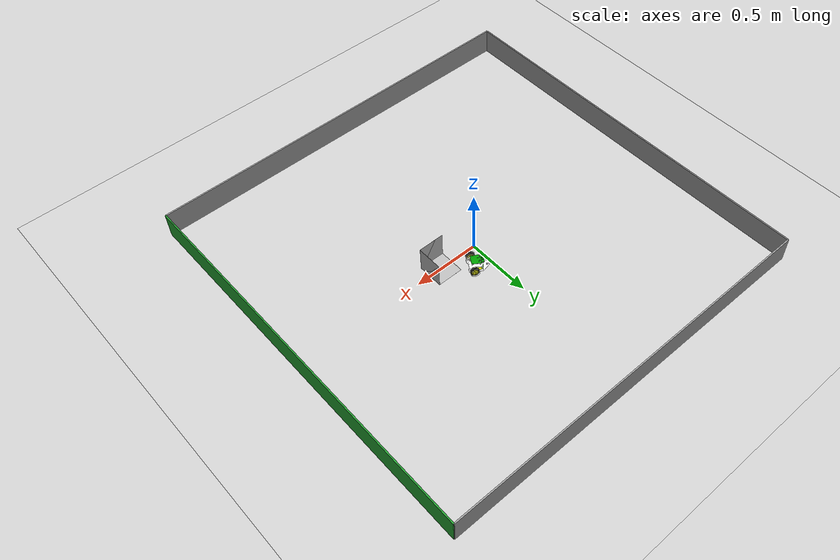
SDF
<sdf version="1.6">
 <world name="default">
  <scene><ambient>0.5 0.5 0.5 1</ambient><shadows>0</shadows><background>0.7 0.7 0.7 1</background></scene>
  <model name="ground_plane">
   <static>1</static>
   <link name="link">
    <collision name="collision">
     <geometry><plane><normal>0 0 1</normal><size>100 100</size></plane></geometry>
     <surface><friction><ode><mu>100</mu><mu2>50</mu2></ode></friction></surface>
    </collision>
    <visual name="visual">
     <cast_shadows>0</cast_shadows>
     <geometry><plane><normal>0 0 1</normal><size>100 100</size></plane></geometry>
     <material>
      <script><uri>file://media/materials/scripts/gazebo.material</uri><name>Gazebo/Grey</name></script>
     </material>
    </visual>
   </link>
  </model>
  <model name="PenguinPi">
   <pose>0.09286 0.147854 0.013853 -9.3e-05 -0.073077 -0.494836</pose>
   <link name="base_link">
    <pose>0 0 0.015 0 -0 0</pose>
    <inertial>
     <mass>1.18011</mass>
     <inertia>
      <ixx>0.00822001</ixx>
      <ixy>0</ixy>
      <ixz>0</ixz>
      <iyy>0.00822006</iyy>
      <iyz>0</iyz>
      <izz>0.00822</izz>
     </inertia>
    </inertial>
    <collision name="collision">
     <geometry><box><size>0.15 0.12 0.03</size></box></geometry>
     <surface><friction><ode><mu>0</mu><mu2>0</mu2><slip1>1</slip1><slip2>1</slip2></ode></friction></surface>
    </collision>
    <collision name="caster_collision">
     <pose>-0.069 0 -0.015 0 -0 0</pose>
     <geometry><sphere><radius>0.009</radius></sphere></geometry>
     <surface><friction><ode><mu>0</mu><mu2>0</mu2><slip1>1</slip1><slip2>1</slip2></ode></friction></surface>
    </collision>
   </link>
   <link name="mesh_links">
    <pose>0.11 -0.086 -0.16 0 -0 1.5708</pose>
    <inertial>
     <pose>-0 0 0.000673 0 -0 0</pose>
     <mass>0.01</mass>
     <inertia><ixx>0</ixx><ixy>0</ixy><ixz>0</ixz><iyy>0</iyy><iyz>0</iyz><izz>0</izz></inertia>
    </inertial>
    <visual name="chassis_visual">
     <material><ambient>1 1 1 1</ambient><diffuse>1 1 1 1</diffuse><specular>0.1 0.1 0.1 1</specular></material>
     <geometry><mesh><uri>model://penguinpi_description/meshes/Chassiss.stl</uri></mesh></geometry>
     <transparency>0.2</transparency>
    </visual>
    <visual name="standoff_visual">
     <material>
      <ambient>0.1 0.1 0.1 1</ambient>
      <diffuse>0.1 0.1 0.1 1</diffuse>
      <specular>0.01 0.01 0.01 1</specular>
     </material>
     <geometry><mesh><uri>model://penguinpi_description/meshes/Castor.stl</uri></mesh></geometry>
    </visual>
    <visual name="motors_visual">
     <material><ambient>1 1 0 1</ambient><diffuse>1 1 0 1</diffuse><specular>0 0 0 0</specular></material>
     <geometry><mesh><uri>model://penguinpi_description/meshes/Motors.stl</uri></mesh></geometry>
    </visual>
    <visual name="electronics_visual">
     <material>
      <ambient>0 0.6 0 1</ambient>
      <diffuse>0 0.6 0 1</diffuse>
      <specular>0.1 0.1 0.1 1</specular>
     </material>
     <geometry><mesh><uri>model://penguinpi_description/meshes/Electronics_s.stl</uri></mesh></geometry>
    </visual>
    <visual name="lwheel_tire_visual">
     <material>
      <ambient>0.1 0.1 0.1 1</ambient>
      <diffuse>0.1 0.1 0.1 1</diffuse>
      <specular>0.01 0.01 0.01 1</specular>
     </material>
     <geometry><mesh><uri>model://penguinpi_description/meshes/Tire_s.stl</uri></mesh></geometry>
    </visual>
    <visual name="lwheel_rim_visual">
     <material><ambient>1 1 0 1</ambient><diffuse>1 1 0 1</diffuse><specular>0 0 0 0</specular></material>
     <geometry><mesh><uri>model://penguinpi_description/meshes/Rim_s.stl</uri></mesh></geometry>
    </visual>
    <visual name="rwheel_tire_visual">
     <material>
      <ambient>0.1 0.1 0.1 1</ambient>
      <diffuse>0.1 0.1 0.1 1</diffuse>
      <specular>0.01 0.01 0.01 1</specular>
     </material>
     <pose>0.171 0.136 0 0 -0 -3.14159</pose>
     <geometry><mesh><uri>model://penguinpi_description/meshes/Tire_s.stl</uri></mesh></geometry>
    </visual>
    <visual name="rwheel_rim_visual">
     <material><ambient>1 1 0 1</ambient><diffuse>1 1 0 1</diffuse><specular>0 0 0 0</specular></material>
     <pose>0.171 0.136 0 0 -0 -3.14159</pose>
     <geometry><mesh><uri>model://penguinpi_description/meshes/Rim_s.stl</uri></mesh></geometry>
    </visual>
   </link>
   <link name="left_wheel">
    <pose>0.041 0.075 0.015 -0 1.5707 1.5707</pose>
    <inertial>
     <mass>1.3</mass>
     <inertia>
      <ixx>0.00448235</ixx>
      <ixy>0</ixy>
      <ixz>0</ixz>
      <iyy>0.00154363</iyy>
      <iyz>0</iyz>
      <izz>0.0066528</izz>
     </inertia>
    </inertial>
    <collision name="collision">
     <geometry><cylinder><radius>0.032</radius><length>0.022</length></cylinder></geometry>
     <surface>
      <friction>
       <ode><mu>50</mu><mu2>200</mu2><fdir1>0 0 0</fdir1><slip1>0</slip1><slip2>0</slip2></ode>
       <torsional>
        <coefficient>1</coefficient>
        <patch_radius>0.06</patch_radius>
        <surface_radius>0</surface_radius>
        <use_patch_radius>1</use_patch_radius>
        <ode><slip>0</slip></ode>
       </torsional>
      </friction>
      <bounce><restitution_coefficient>0</restitution_coefficient><threshold>1e+06</threshold></bounce>
      <contact>
       <collide_without_contact>0</collide_without_contact>
       <collide_without_contact_bitmask>1</collide_without_contact_bitmask>
       <collide_bitmask>1</collide_bitmask>
       <ode>
        <soft_cfm>0</soft_cfm>
        <soft_erp>0.2</soft_erp>
        <kp>1e+08</kp>
        <kd>1</kd>
        <max_vel>0.01</max_vel>
        <min_depth>0</min_depth>
       </ode>
       <bullet>
        <split_impulse>1</split_impulse>
        <split_impulse_penetration_threshold>-0.01</split_impulse_penetration_threshold>
        <soft_cfm>0</soft_cfm>
        <soft_erp>0.2</soft_erp>
        <kp>1e+08</kp>
        <kd>1</kd>
       </bullet>
      </contact>
     </surface>
    </collision>
    <visual name="visual">
     <geometry><cylinder><radius>0.032</radius><length>0.022</length></cylinder></geometry>
     <transparency>0.9</transparency>
    </visual>
   </link>
   <link name="right_wheel">
    <pose>0.041 -0.075 0.015 -0 1.5707 1.5707</pose>
    <inertial>
     <mass>1.3</mass>
     <inertia>
      <ixx>0.00448235</ixx>
      <ixy>0</ixy>
      <ixz>0</ixz>
      <iyy>0.00154363</iyy>
      <iyz>0</iyz>
      <izz>0.0066528</izz>
     </inertia>
    </inertial>
    <collision name="collision">
     <geometry><cylinder><radius>0.032</radius><length>0.022</length></cylinder></geometry>
     <surface>
      <friction>
       <ode><mu>50</mu><mu2>200</mu2><fdir1>0 0 0</fdir1><slip1>0</slip1><slip2>0</slip2></ode>
       <torsional>
        <coefficient>1</coefficient>
        <patch_radius>0.06</patch_radius>
        <surface_radius>0</surface_radius>
        <use_patch_radius>1</use_patch_radius>
        <ode><slip>0</slip></ode>
       </torsional>
      </friction>
      <bounce><restitution_coefficient>0</restitution_coefficient><threshold>1e+06</threshold></bounce>
      <contact>
       <collide_without_contact>0</collide_without_contact>
       <collide_without_contact_bitmask>1</collide_without_contact_bitmask>
       <collide_bitmask>1</collide_bitmask>
       <ode>
        <soft_cfm>0</soft_cfm>
        <soft_erp>0.2</soft_erp>
        <kp>1e+08</kp>
        <kd>1</kd>
        <max_vel>0.01</max_vel>
        <min_depth>0</min_depth>
       </ode>
       <bullet>
        <split_impulse>1</split_impulse>
        <split_impulse_penetration_threshold>-0.01</split_impulse_penetration_threshold>
        <soft_cfm>0</soft_cfm>
        <soft_erp>0.2</soft_erp>
        <kp>1e+08</kp>
        <kd>1</kd>
       </bullet>
      </contact>
     </surface>
    </collision>
    <visual name="visual">
     <geometry><cylinder><radius>0.032</radius><length>0.022</length></cylinder></geometry>
     <transparency>0.9</transparency>
    </visual>
   </link>
   <link name="cam_link">
    <pose>0.08 0 0.015 0 -0 0</pose>
    <inertial>
     <pose>-0.06 0 -0 0 -0 0</pose>
     <mass>0.05</mass>
     <inertia><ixx>3e-05</ixx><ixy>0</ixy><ixz>0</ixz><iyy>3e-05</iyy><iyz>0</iyz><izz>3e-05</izz></inertia>
    </inertial>
    <sensor name="camera1" type="camera">
     <camera name="head">
      <horizontal_fov>1.0855</horizontal_fov>
      <image><width>640</width><height>480</height><format>R8G8B8</format></image>
      <clip><near>0.02</near><far>300</far></clip>
     </camera>
     <always_on>1</always_on>
     <update_rate>30</update_rate>
     <visualize>0</visualize>
     <plugin name="camera_controller" filename="libgazebo_ros_camera.so">
      <alwaysOn>1</alwaysOn>
      <updateRate>0.0</updateRate>
      <cameraName>picam/camera</cameraName>
      <imageTopicName>image_raw</imageTopicName>
      <cameraInfoTopicName>camera_info</cameraInfoTopicName>
      <frameName>camera_link</frameName>
      <hackBaseline>0.07</hackBaseline>
      <distortionK1>0.0</distortionK1>
      <distortionK2>0.0</distortionK2>
      <distortionK3>0.0</distortionK3>
      <distortionT1>0.0</distortionT1>
      <distortionT2>0.0</distortionT2>
     </plugin>
    </sensor>
   </link>
   <joint name="cam_fix" type="fixed"><parent>cam_link</parent><child>base_link</child></joint>
   <joint name="fix" type="fixed"><parent>mesh_links</parent><child>base_link</child></joint>
   <joint name="left_wheel_hinge" type="revolute">
    <pose>0 0 -0.03 0 -0 0</pose>
    <child>left_wheel</child>
    <parent>base_link</parent>
    <axis>
     <xyz>0 1 0</xyz>
     <limit><lower>-1e+16</lower><upper>1e+16</upper><effort>-1</effort><velocity>-1</velocity></limit>
     <dynamics>
      <spring_reference>0</spring_reference>
      <spring_stiffness>0</spring_stiffness>
      <damping>0.01</damping>
      <friction>0</friction>
     </dynamics>
     <use_parent_model_frame>1</use_parent_model_frame>
    </axis>
    <physics>
     <ode><limit><cfm>0</cfm><erp>0.2</erp></limit><suspension><cfm>0</cfm><erp>0.2</erp></suspension></ode>
    </physics>
   </joint>
   <joint name="right_wheel_hinge" type="revolute">
    <pose>0 0 0.03 0 -0 0</pose>
    <child>right_wheel</child>
    <parent>base_link</parent>
    <axis>
     <xyz>0 1 0</xyz>
     <limit><lower>-1e+16</lower><upper>1e+16</upper><effort>-1</effort><velocity>-1</velocity></limit>
     <dynamics>
      <spring_reference>0</spring_reference>
      <spring_stiffness>0</spring_stiffness>
      <damping>0.01</damping>
      <friction>0</friction>
     </dynamics>
     <use_parent_model_frame>1</use_parent_model_frame>
    </axis>
    <physics>
     <ode><limit><cfm>0</cfm><erp>0.2</erp></limit><suspension><cfm>0</cfm><erp>0.2</erp></suspension></ode>
    </physics>
   </joint>
   <plugin name="differential_drive_controller" filename="libgazebo_ros_diff_drive.so">
    <updateRate>20</updateRate>
    <leftJoint>left_wheel_hinge</leftJoint>
    <rightJoint>right_wheel_hinge</rightJoint>
    <wheelSeparation>0.150</wheelSeparation>
    <wheelDiameter>0.075</wheelDiameter>
    <wheelAcceleration>1</wheelAcceleration>
    <wheelTorque>5</wheelTorque>
    <commandTopic>cmd_vel</commandTopic>
    <odometryTopic>odom</odometryTopic>
    <odometryFrame>odom</odometryFrame>
    <robotBaseFrame>base_link</robotBaseFrame>
    <odometrySource>0</odometrySource>
    <publishWheelTF>1</publishWheelTF>
    <publishOdom>1</publishOdom>
    <publishWheelJointState>1</publishWheelJointState>
    <legacyMode>0</legacyMode>
   </plugin>
  </model>
  <model name="my_mesh">
   <pose>0.3 0 0 0 -0 0</pose>
   <static>1</static>
   <link name="body">
    <inertial>
     <mass>1</mass>
     <inertia><ixx>1</ixx><ixy>0</ixy><ixz>0</ixz><iyy>1</iyy><iyz>0</iyz><izz>1</izz></inertia>
    </inertial>
    <visual name="visual">
     <geometry><mesh><uri>model://penguinpi_gazebo/models/rig/rig.dae</uri></mesh></geometry>
    </visual>
   </link>
  </model>
  <physics name="default_physics" default="0" type="ode">
   <max_step_size>0.005</max_step_size>
   <real_time_factor>1</real_time_factor>
   <real_time_update_rate>100</real_time_update_rate>
  </physics>
  <gravity>0 0 -9.8</gravity>
  <magnetic_field>6e-06 2.3e-05 -4.2e-05</magnetic_field>
  <atmosphere type="adiabatic"/>
  <audio><device>default</device></audio>
  <spherical_coordinates>
   <surface_model>EARTH_WGS84</surface_model>
   <latitude_deg>0</latitude_deg>
   <longitude_deg>0</longitude_deg>
   <elevation>0</elevation>
   <heading_deg>0</heading_deg>
  </spherical_coordinates>
  <model name="wall">
   <static>1</static>
   <link name="link">
    <inertial>
     <mass>1</mass>
     <inertia>
      <ixx>0.166667</ixx>
      <ixy>0</ixy>
      <ixz>0</ixz>
      <iyy>0.166667</iyy>
      <iyz>0</iyz>
      <izz>0.166667</izz>
     </inertia>
    </inertial>
    <pose>0 0 -0.4 0 -0 0</pose>
    <visual name="visual">
     <geometry><box><size>0.01 3 0.2</size></box></geometry>
     <material>
      <script><name>Gazebo/Green</name><uri>file://media/materials/scripts/gazebo.material</uri></script>
      <shader type="vertex"><normal_map>__default__</normal_map></shader>
      <ambient>0.3 0.3 0.3 1</ambient>
      <diffuse>0.7 0.7 0.7 1</diffuse>
      <specular>0.01 0.01 0.01 1</specular>
      <emissive>0 0 0 1</emissive>
     </material>
    </visual>
    <collision name="collision">
     <geometry><box><size>0.01 3 0.2</size></box></geometry>
     <surface>
      <friction>
       <ode><mu>1</mu><mu2>1</mu2><fdir1>0 0 0</fdir1><slip1>0</slip1><slip2>0</slip2></ode>
       <torsional>
        <coefficient>1</coefficient>
        <patch_radius>0</patch_radius>
        <surface_radius>0</surface_radius>
        <use_patch_radius>1</use_patch_radius>
        <ode><slip>0</slip></ode>
       </torsional>
      </friction>
      <bounce><restitution_coefficient>0</restitution_coefficient><threshold>1e+06</threshold></bounce>
      <contact>
       <collide_without_contact>0</collide_without_contact>
       <collide_without_contact_bitmask>1</collide_without_contact_bitmask>
       <collide_bitmask>1</collide_bitmask>
       <ode>
        <soft_cfm>0</soft_cfm>
        <soft_erp>0.2</soft_erp>
        <kp>1e+13</kp>
        <kd>1</kd>
        <max_vel>0.01</max_vel>
        <min_depth>0</min_depth>
       </ode>
       <bullet>
        <split_impulse>1</split_impulse>
        <split_impulse_penetration_threshold>-0.01</split_impulse_penetration_threshold>
        <soft_cfm>0</soft_cfm>
        <soft_erp>0.2</soft_erp>
        <kp>1e+13</kp>
        <kd>1</kd>
       </bullet>
      </contact>
     </surface>
    </collision>
   </link>
   <static>0</static>
   <pose>1.5 0 0.5 0 -0 0</pose>
  </model>
  <model name="wall_0">
   <static>1</static>
   <link name="link">
    <inertial>
     <mass>1</mass>
     <inertia>
      <ixx>0.166667</ixx>
      <ixy>0</ixy>
      <ixz>0</ixz>
      <iyy>0.166667</iyy>
      <iyz>0</iyz>
      <izz>0.166667</izz>
     </inertia>
    </inertial>
    <pose>0 -0 -0.4 0 -0 0</pose>
    <visual name="visual">
     <geometry><box><size>0.01 3 0.2</size></box></geometry>
     <material>
      <script><name>Gazebo/Grey</name><uri>file://media/materials/scripts/gazebo.material</uri></script>
      <shader type="vertex"><normal_map>__default__</normal_map></shader>
      <ambient>0.3 0.3 0.3 1</ambient>
      <diffuse>0.7 0.7 0.7 1</diffuse>
      <specular>0.01 0.01 0.01 1</specular>
      <emissive>0 0 0 1</emissive>
     </material>
    </visual>
    <collision name="collision">
     <geometry><box><size>0.01 3 0.2</size></box></geometry>
     <surface>
      <friction>
       <ode><mu>1</mu><mu2>1</mu2><fdir1>0 0 0</fdir1><slip1>0</slip1><slip2>0</slip2></ode>
       <torsional>
        <coefficient>1</coefficient>
        <patch_radius>0</patch_radius>
        <surface_radius>0</surface_radius>
        <use_patch_radius>1</use_patch_radius>
        <ode><slip>0</slip></ode>
       </torsional>
      </friction>
      <bounce><restitution_coefficient>0</restitution_coefficient><threshold>1e+06</threshold></bounce>
      <contact>
       <collide_without_contact>0</collide_without_contact>
       <collide_without_contact_bitmask>1</collide_without_contact_bitmask>
       <collide_bitmask>1</collide_bitmask>
       <ode>
        <soft_cfm>0</soft_cfm>
        <soft_erp>0.2</soft_erp>
        <kp>1e+13</kp>
        <kd>1</kd>
        <max_vel>0.01</max_vel>
        <min_depth>0</min_depth>
       </ode>
       <bullet>
        <split_impulse>1</split_impulse>
        <split_impulse_penetration_threshold>-0.01</split_impulse_penetration_threshold>
        <soft_cfm>0</soft_cfm>
        <soft_erp>0.2</soft_erp>
        <kp>1e+13</kp>
        <kd>1</kd>
       </bullet>
      </contact>
     </surface>
    </collision>
   </link>
   <static>0</static>
   <pose>-1.5 0 0.5 0 -0 0</pose>
  </model>
  <model name="wall_1">
   <static>1</static>
   <link name="link">
    <inertial>
     <mass>1</mass>
     <inertia>
      <ixx>0.166667</ixx>
      <ixy>0</ixy>
      <ixz>0</ixz>
      <iyy>0.166667</iyy>
      <iyz>0</iyz>
      <izz>0.166667</izz>
     </inertia>
    </inertial>
    <pose>0 -0 -0.4 0 -0 0</pose>
    <visual name="visual">
     <geometry><box><size>0.01 3 0.2</size></box></geometry>
     <material>
      <script><name>Gazebo/Grey</name><uri>file://media/materials/scripts/gazebo.material</uri></script>
      <shader type="vertex"><normal_map>__default__</normal_map></shader>
      <ambient>0.3 0.3 0.3 1</ambient>
      <diffuse>0.7 0.7 0.7 1</diffuse>
      <specular>0.01 0.01 0.01 1</specular>
      <emissive>0 0 0 1</emissive>
     </material>
    </visual>
    <collision name="collision">
     <geometry><box><size>0.01 3 0.2</size></box></geometry>
     <surface>
      <friction>
       <ode><mu>1</mu><mu2>1</mu2><fdir1>0 0 0</fdir1><slip1>0</slip1><slip2>0</slip2></ode>
       <torsional>
        <coefficient>1</coefficient>
        <patch_radius>0</patch_radius>
        <surface_radius>0</surface_radius>
        <use_patch_radius>1</use_patch_radius>
        <ode><slip>0</slip></ode>
       </torsional>
      </friction>
      <bounce><restitution_coefficient>0</restitution_coefficient><threshold>1e+06</threshold></bounce>
      <contact>
       <collide_without_contact>0</collide_without_contact>
       <collide_without_contact_bitmask>1</collide_without_contact_bitmask>
       <collide_bitmask>1</collide_bitmask>
       <ode>
        <soft_cfm>0</soft_cfm>
        <soft_erp>0.2</soft_erp>
        <kp>1e+13</kp>
        <kd>1</kd>
        <max_vel>0.01</max_vel>
        <min_depth>0</min_depth>
       </ode>
       <bullet>
        <split_impulse>1</split_impulse>
        <split_impulse_penetration_threshold>-0.01</split_impulse_penetration_threshold>
        <soft_cfm>0</soft_cfm>
        <soft_erp>0.2</soft_erp>
        <kp>1e+13</kp>
        <kd>1</kd>
       </bullet>
      </contact>
     </surface>
    </collision>
   </link>
   <static>0</static>
   <pose>0 1.5 0.5 0 -0 1.5708</pose>
  </model>
  <model name="wall_2">
   <static>1</static>
   <link name="link">
    <inertial>
     <mass>1</mass>
     <inertia>
      <ixx>0.166667</ixx>
      <ixy>0</ixy>
      <ixz>0</ixz>
      <iyy>0.166667</iyy>
      <iyz>0</iyz>
      <izz>0.166667</izz>
     </inertia>
    </inertial>
    <pose>0 -0 -0.4 0 -0 0</pose>
    <visual name="visual">
     <geometry><box><size>0.01 3 0.2</size></box></geometry>
     <material>
      <script><name>Gazebo/Grey</name><uri>file://media/materials/scripts/gazebo.material</uri></script>
      <shader type="vertex"><normal_map>__default__</normal_map></shader>
      <ambient>0.3 0.3 0.3 1</ambient>
      <diffuse>0.7 0.7 0.7 1</diffuse>
      <specular>0.01 0.01 0.01 1</specular>
      <emissive>0 0 0 1</emissive>
     </material>
    </visual>
    <collision name="collision">
     <geometry><box><size>0.01 3 0.2</size></box></geometry>
     <surface>
      <friction>
       <ode><mu>1</mu><mu2>1</mu2><fdir1>0 0 0</fdir1><slip1>0</slip1><slip2>0</slip2></ode>
       <torsional>
        <coefficient>1</coefficient>
        <patch_radius>0</patch_radius>
        <surface_radius>0</surface_radius>
        <use_patch_radius>1</use_patch_radius>
        <ode><slip>0</slip></ode>
       </torsional>
      </friction>
      <bounce><restitution_coefficient>0</restitution_coefficient><threshold>1e+06</threshold></bounce>
      <contact>
       <collide_without_contact>0</collide_without_contact>
       <collide_without_contact_bitmask>1</collide_without_contact_bitmask>
       <collide_bitmask>1</collide_bitmask>
       <ode>
        <soft_cfm>0</soft_cfm>
        <soft_erp>0.2</soft_erp>
        <kp>1e+13</kp>
        <kd>1</kd>
        <max_vel>0.01</max_vel>
        <min_depth>0</min_depth>
       </ode>
       <bullet>
        <split_impulse>1</split_impulse>
        <split_impulse_penetration_threshold>-0.01</split_impulse_penetration_threshold>
        <soft_cfm>0</soft_cfm>
        <soft_erp>0.2</soft_erp>
        <kp>1e+13</kp>
        <kd>1</kd>
       </bullet>
      </contact>
     </surface>
    </collision>
   </link>
   <static>0</static>
   <pose>0 -1.5 0.5 0 -0 1.5708</pose>
  </model>
  <model name="my_mesh_clone">
   <pose>0.3 -0.097 0.097 3.14159 1.57079 -1.57079</pose>
   <static>1</static>
   <link name="body">
    <inertial>
     <mass>1</mass>
     <inertia><ixx>1</ixx><ixy>0</ixy><ixz>0</ixz><iyy>1</iyy><iyz>0</iyz><izz>1</izz></inertia>
    </inertial>
    <visual name="visual">
     <geometry><mesh><uri>model://penguinpi_gazebo/models/rig/rig.dae</uri></mesh></geometry>
    </visual>
   </link>
  </model>
  <model name="my_mesh_clone_0">
   <pose>0.397 0 0.097 1.5708 0 -1.5708</pose>
   <static>1</static>
   <link name="body">
    <inertial>
     <mass>1</mass>
     <inertia><ixx>1</ixx><ixy>0</ixy><ixz>0</ixz><iyy>1</iyy><iyz>0</iyz><izz>1</izz></inertia>
    </inertial>
    <visual name="visual">
     <geometry><mesh><uri>model://penguinpi_gazebo/models/rig/rig.dae</uri></mesh></geometry>
    </visual>
   </link>
  </model>
  <light name="sun" type="directional">
   <pose>0 0 10 0 -0 0</pose>
   <diffuse>0.8 0.8 0.8 1</diffuse>
   <specular>0.2 0.2 0.2 1</specular>
   <attenuation>
    <range>1000</range>
    <constant>0.9</constant>
    <linear>0.01</linear>
    <quadratic>0.001</quadratic>
   </attenuation>
   <direction>-0.5 0.1 -0.9</direction>
  </light>
  <light name="user_spot_light_0" type="spot">
   <pose>0.297127 -0.005647 1 0 -0 0</pose>
   <diffuse>0.5 0.5 0.5 1</diffuse>
   <specular>0.1 0.1 0.1 1</specular>
   <direction>0 0 -1</direction>
   <attenuation>
    <range>20</range>
    <constant>0.5</constant>
    <linear>0.01</linear>
    <quadratic>0.001</quadratic>
   </attenuation>
   <cast_shadows>0</cast_shadows>
   <spot><inner_angle>0.6</inner_angle><outer_angle>1</outer_angle><falloff>1</falloff></spot>
  </light>
  <light name="user_spot_light_1" type="spot">
   <pose>0.377713 0.658805 1 0 -0 0</pose>
   <diffuse>0.5 0.5 0.5 1</diffuse>
   <specular>0.1 0.1 0.1 1</specular>
   <direction>0 0 -1</direction>
   <attenuation>
    <range>20</range>
    <constant>0.5</constant>
    <linear>0.01</linear>
    <quadratic>0.001</quadratic>
   </attenuation>
   <cast_shadows>0</cast_shadows>
   <spot><inner_angle>0.6</inner_angle><outer_angle>1</outer_angle><falloff>1</falloff></spot>
  </light>
  <light name="user_spot_light_2" type="spot">
   <pose>-0.487641 -0.006644 1 0 -0 0</pose>
   <diffuse>0.5 0.5 0.5 1</diffuse>
   <specular>0.1 0.1 0.1 1</specular>
   <direction>0 0 -1</direction>
   <attenuation>
    <range>20</range>
    <constant>0.5</constant>
    <linear>0.01</linear>
    <quadratic>0.001</quadratic>
   </attenuation>
   <cast_shadows>0</cast_shadows>
   <spot><inner_angle>0.6</inner_angle><outer_angle>1</outer_angle><falloff>1</falloff></spot>
  </light>
 </world>
</sdf>
